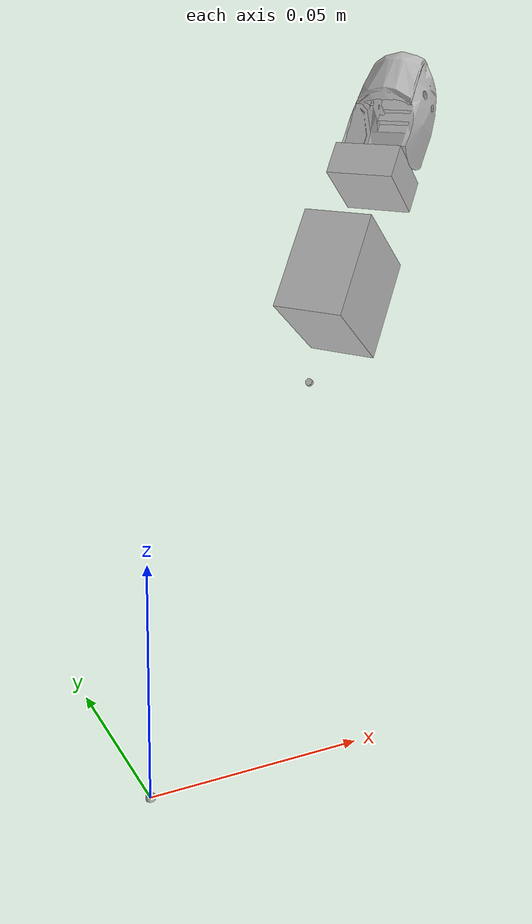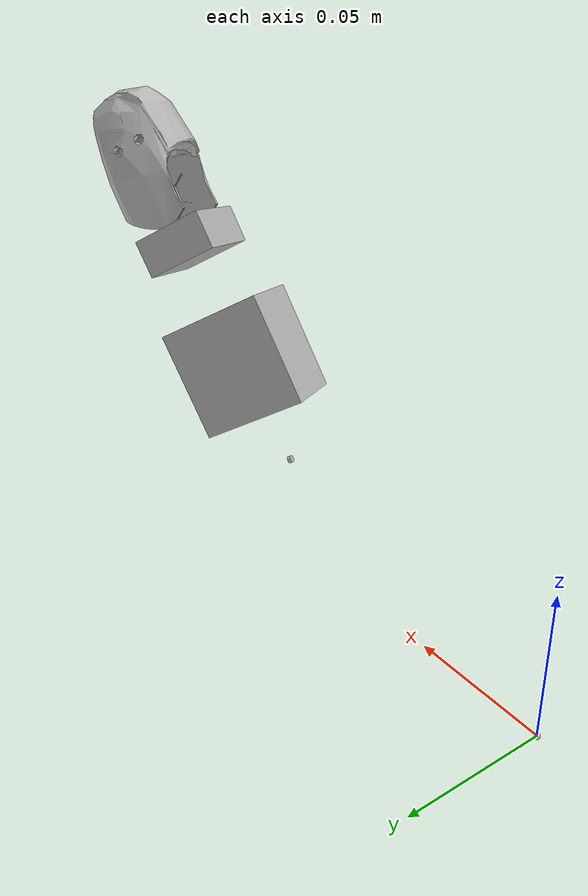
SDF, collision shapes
<sdf version='1.6'>
  <model name='hithand'>
    <link name='base_link'>
      <pose frame=''>0 0 0 0 -0 0</pose>
      <inertial>
        <pose frame=''>0 0 0 0 -0 0</pose>
        <mass>1</mass>
        <inertia>
          <ixx>1</ixx>
          <ixy>0</ixy>
          <ixz>0</ixz>
          <iyy>1</iyy>
          <iyz>0</iyz>
          <izz>1</izz>
        </inertia>
      </inertial>
      <collision name='base_link_collision'>
        <pose frame=''>0 0 0 0 -0 0</pose>
        <geometry>
          <cylinder>
            <length>0.001</length>
            <radius>0.001</radius>
          </cylinder>
        </geometry>
        <surface>
          <contact>
            <ode/>
          </contact>
          <friction>
            <ode/>
          </friction>
        </surface>
      </collision>
      <visual name='base_link_visual'>
        <pose frame=''>0 0 0 0 -0 0</pose>
        <geometry>
          <mesh>
            <scale>1 1 1</scale>
            <uri>model://hithand_description/meshes/visual/hit-hand-2-palm-right.dae</uri>
          </mesh>
        </geometry>
        <material>
          <script>
            <uri>__default__</uri>
            <name>__default__</name>
          </script>
        </material>
      </visual>
      <gravity>0</gravity>
      <velocity_decay/>
      <self_collide>1</self_collide>
    </link>
    <joint name='fixed' type='fixed'>
      <child>base_link</child>
      <parent>world</parent>
    </joint>
    <link name='Right_Thumb_Basecover'>
      <pose frame=''>0.062176 0.044373 0.078735 0.22581 -1.08366 0.411355</pose>
      <inertial>
        <pose frame=''>0 0 0 0 -0 0</pose>
        <mass>1</mass>
        <inertia>
          <ixx>1</ixx>
          <ixy>0</ixy>
          <ixz>0</ixz>
          <iyy>1</iyy>
          <iyz>0</iyz>
          <izz>1</izz>
        </inertia>
      </inertial>
      <collision name='Right_Thumb_Basecover_collision'>
        <pose frame=''>0 0 0 0 -0 0</pose>
        <geometry>
          <cylinder>
            <length>0.001</length>
            <radius>0.001</radius>
          </cylinder>
        </geometry>
        <surface>
          <contact>
            <ode/>
          </contact>
          <friction>
            <ode>
              <mu>0.2</mu>
              <mu2>0.2</mu2>
            </ode>
          </friction>
        </surface>
      </collision>
      <visual name='Right_Thumb_Basecover_visual'>
        <pose frame=''>0 0 0 0 -0 0</pose>
        <geometry>
          <mesh>
            <scale>1 1 1</scale>
            <uri>model://hithand_description/meshes/visual/hit-hand-2-finger-basecover.dae</uri>
          </mesh>
        </geometry>
        <material>
          <script>
            <uri>__default__</uri>
            <name>__default__</name>
          </script>
        </material>
      </visual>
      <gravity>0</gravity>
      <velocity_decay/>
      <self_collide>1</self_collide>
    </link>
    <joint name='Right_Thumb_1' type='revolute'>
      <child>Right_Thumb_Basecover</child>
      <parent>base_link</parent>
      <axis>
        <xyz>-0.699871 -0.549587 0.456217</xyz>
        <limit>
          <lower>-0.5</lower>
          <upper>1.4</upper>
          <effort>1000</effort>
          <velocity>3.14</velocity>
        </limit>
        <dynamics>
          <damping>0.7</damping>
          <friction>0.5</friction>
          <spring_reference>0</spring_reference>
          <spring_stiffness>0</spring_stiffness>
        </dynamics>
        <use_parent_model_frame>1</use_parent_model_frame>
      </axis>
    </joint>
    <link name='Right_Thumb_Phoaprox'>
      <pose frame=''>0.062176 0.044373 0.078735 1.79661 -1.08366 0.411355</pose>
      <inertial>
        <pose frame=''>0.062176 0.044373 0.078735 0.22581 -1.08366 0.411355</pose>
        <mass>1</mass>
        <inertia>
          <ixx>1</ixx>
          <ixy>0</ixy>
          <ixz>0</ixz>
          <iyy>1</iyy>
          <iyz>0</iyz>
          <izz>1</izz>
        </inertia>
      </inertial>
      <collision name='Right_Thumb_Phoaprox_collision'>
        <pose frame=''>0.03 0 0 0 -0 0</pose>
        <geometry>
          <box>
            <size>0.03 0.03 0.02</size>
          </box>
        </geometry>
        <surface>
          <contact>
            <ode/>
          </contact>
          <friction>
            <ode/>
          </friction>
        </surface>
      </collision>
      <visual name='Right_Thumb_Phoaprox_visual'>
        <pose frame=''>0 0 0 0 -0 0</pose>
        <geometry>
          <mesh>
            <scale>1 1 1</scale>
            <uri>model://hithand_description/meshes/visual/hit-hand-2-finger-phaprox.dae</uri>
          </mesh>
        </geometry>
        <material>
          <script>
            <uri>__default__</uri>
            <name>__default__</name>
          </script>
        </material>
      </visual>
      <gravity>0</gravity>
      <velocity_decay/>
      <self_collide>1</self_collide>
    </link>
    <joint name='Right_Thumb_2' type='revolute'>
      <child>Right_Thumb_Phoaprox</child>
      <parent>Right_Thumb_Basecover</parent>
      <axis>
        <xyz>0.57105 -0.814198 -0.104808</xyz>
        <limit>
          <lower>-0.5</lower>
          <upper>1.4</upper>
          <effort>1000</effort>
          <velocity>3.14</velocity>
        </limit>
        <dynamics>
          <damping>0.7</damping>
          <friction>0.5</friction>
          <spring_reference>0</spring_reference>
          <spring_stiffness>0</spring_stiffness>
        </dynamics>
        <use_parent_model_frame>1</use_parent_model_frame>
      </axis>
    </joint>
    <link name='Right_Thumb_Phamed'>
      <pose frame=''>0.085774 0.054667 0.127337 1.79661 -1.08366 0.411355</pose>
      <inertial>
        <pose frame=''>0 0 0 0 -0 0</pose>
        <mass>1</mass>
        <inertia>
          <ixx>1</ixx>
          <ixy>0</ixy>
          <ixz>0</ixz>
          <iyy>1</iyy>
          <iyz>0</iyz>
          <izz>1</izz>
        </inertia>
      </inertial>
      <collision name='Right_Thumb_Phamed_collision'>
        <pose frame=''>0.01 0 0 0 -0 0</pose>
        <geometry>
          <box>
            <size>0.01 0.02 0.02</size>
          </box>
        </geometry>
        <surface>
          <contact>
            <ode/>
          </contact>
          <friction>
            <ode/>
          </friction>
        </surface>
      </collision>
      <visual name='Right_Thumb_Phamed_visual'>
        <pose frame=''>0 0 0 0 -0 0</pose>
        <geometry>
          <mesh>
            <scale>1 1 1</scale>
            <uri>model://hithand_description/meshes/visual/hit-hand-2-finger-phamed.dae</uri>
          </mesh>
        </geometry>
        <material>
          <script>
            <uri>__default__</uri>
            <name>__default__</name>
          </script>
        </material>
      </visual>
      <gravity>0</gravity>
      <velocity_decay/>
      <self_collide>1</self_collide>
    </link>
    <joint name='Right_Thumb_3' type='revolute'>
      <child>Right_Thumb_Phamed</child>
      <parent>Right_Thumb_Phoaprox</parent>
      <axis>
        <xyz>0.57105 -0.814198 -0.104808</xyz>
        <limit>
          <lower>-0.5</lower>
          <upper>1.4</upper>
          <effort>1000</effort>
          <velocity>3.14</velocity>
        </limit>
        <dynamics>
          <damping>0.7</damping>
          <friction>0.5</friction>
          <spring_reference>0</spring_reference>
          <spring_stiffness>0</spring_stiffness>
        </dynamics>
        <use_parent_model_frame>1</use_parent_model_frame>
      </axis>
    </joint>
    <link name='Right_Thumb_Phadist'>
      <pose frame=''>0.0965 0.059347 0.149429 1.6888 0.472948 0.665593</pose>
      <inertial>
        <pose frame=''>0 0 0 0 -0 0</pose>
        <mass>1</mass>
        <inertia>
          <ixx>1</ixx>
          <ixy>0</ixy>
          <ixz>0</ixz>
          <iyy>1</iyy>
          <iyz>0</iyz>
          <izz>1</izz>
        </inertia>
      </inertial>
      <collision name='Right_Thumb_Phadist_collision'>
        <pose frame=''>0 0 0 0 -0 0</pose>
        <geometry>
          <mesh>
            <scale>1 1 1</scale>
            <uri>model://hithand_description/meshes/visual/hit-hand-2-finger-phadist.dae</uri>
          </mesh>
        </geometry>
        <surface>
          <contact>
            <ode/>
          </contact>
          <friction>
            <ode/>
          </friction>
        </surface>
      </collision>
      <visual name='Right_Thumb_Phadist_visual'>
        <pose frame=''>0 0 0 0 -0 0</pose>
        <geometry>
          <mesh>
            <scale>1 1 1</scale>
            <uri>model://hithand_description/meshes/visual/hit-hand-2-finger-phadist.dae</uri>
          </mesh>
        </geometry>
        <material>
          <script>
            <uri>__default__</uri>
            <name>__default__</name>
          </script>
        </material>
      </visual>
      <gravity>0</gravity>
      <velocity_decay/>
      <self_collide>1</self_collide>
    </link>
    <joint name='Right_Thumb_4' type='revolute'>
      <child>Right_Thumb_Phadist</child>
      <parent>Right_Thumb_Phamed</parent>
      <axis>
        <xyz>0.57105 -0.814198 -0.104808</xyz>
        <limit>
          <lower>-0.5</lower>
          <upper>1.4</upper>
          <effort>1000</effort>
          <velocity>3.14</velocity>
        </limit>
        <dynamics>
          <damping>0.7</damping>
          <friction>0.5</friction>
          <spring_reference>0</spring_reference>
          <spring_stiffness>0</spring_stiffness>
        </dynamics>
        <use_parent_model_frame>1</use_parent_model_frame>
      </axis>
    </joint>
    <plugin name='gazebo_ros_control' filename='libgazebo_ros_control.so'>
      <robotNamespace>/hithand</robotNamespace>
      <robotSimType>gazebo_ros_control/DefaultRobotHWSim</robotSimType>
    </plugin>
    <static>0</static>
  </model>
</sdf>
